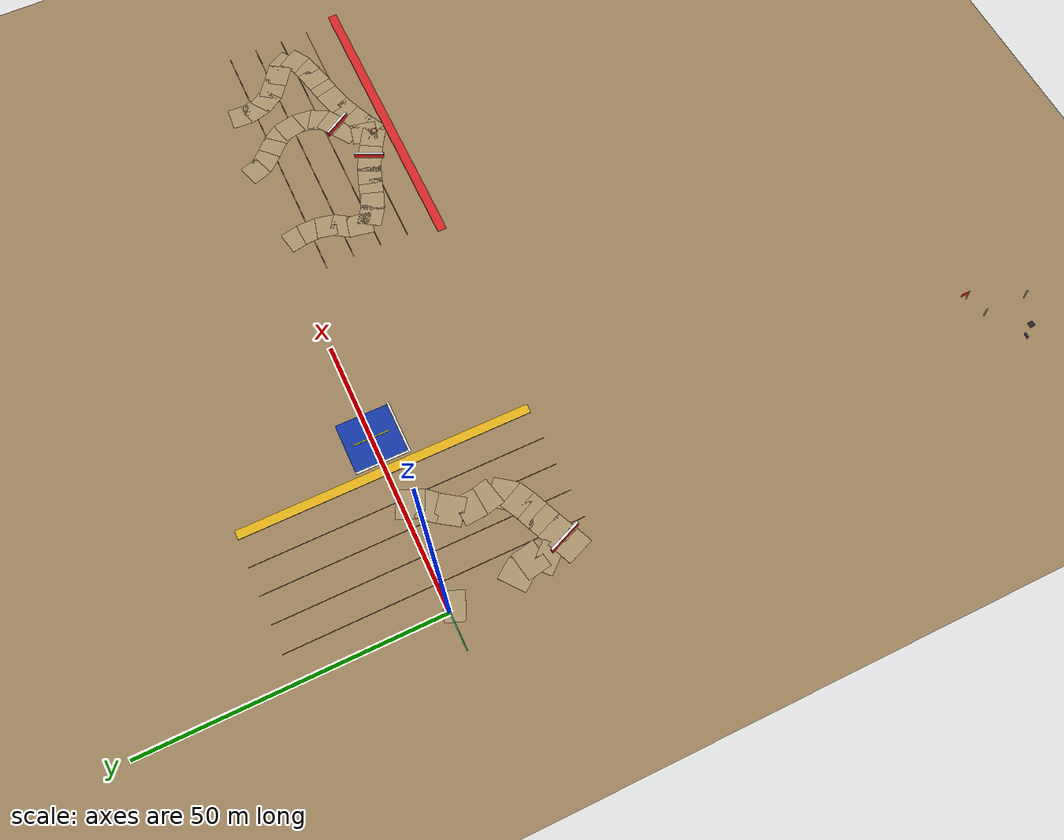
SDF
<sdf version="1.6">
 <world name="navitas_arena">
  <model name="ground_plane">
   <static>true</static>
   <link name="link">
    <collision name="collision">
     <geometry><plane><normal>0 0 1</normal><size>400 400</size></plane></geometry>
     <surface><friction><ode><mu>0.800</mu><mu2>0.800</mu2></ode></friction></surface>
    </collision>
    <visual name="visual">
     <cast_shadows>false</cast_shadows>
     <geometry><plane><normal>0 0 1</normal><size>400 400</size></plane></geometry>
     <material>
      <ambient>0.62 0.52 0.37 1</ambient>
      <diffuse>0.62 0.52 0.37 1</diffuse>
      <specular>0.04 0.04 0.04 1</specular>
     </material>
    </visual>
   </link>
  </model>
  <model name="judge_tent_pole_2">
   <static>true</static>
   <pose>8.000 -109.000 1.200 0 0 0.000</pose>
   <link name="link">
    <collision name="col"><geometry><box><size>0.180 0.180 2.400</size></box></geometry></collision>
    <visual name="vis">
     <geometry><box><size>0.180 0.180 2.400</size></box></geometry>
     <material>
      <ambient>0.85 0.85 0.80 1</ambient>
      <diffuse>0.85 0.85 0.80 1</diffuse>
      <specular>0.04 0.04 0.04 1</specular>
     </material>
    </visual>
   </link>
  </model>
  <model name="judge_tent_pole_4">
   <static>true</static>
   <pose>8.000 -101.000 1.200 0 0 0.000</pose>
   <link name="link">
    <collision name="col"><geometry><box><size>0.180 0.180 2.400</size></box></geometry></collision>
    <visual name="vis">
     <geometry><box><size>0.180 0.180 2.400</size></box></geometry>
     <material>
      <ambient>0.85 0.85 0.80 1</ambient>
      <diffuse>0.85 0.85 0.80 1</diffuse>
      <specular>0.04 0.04 0.04 1</specular>
     </material>
    </visual>
   </link>
  </model>
  <model name="judge_monitor_2">
   <static>true</static>
   <pose>1.400 -104.750 0.950 0 0 0.000</pose>
   <link name="link">
    <collision name="col"><geometry><box><size>1.000 0.120 0.650</size></box></geometry></collision>
    <visual name="vis">
     <geometry><box><size>1.000 0.120 0.650</size></box></geometry>
     <material>
      <ambient>0.02 0.02 0.03 1</ambient>
      <diffuse>0.02 0.02 0.03 1</diffuse>
      <specular>0.04 0.04 0.04 1</specular>
     </material>
    </visual>
   </link>
  </model>
  <model name="judge_chair_3">
   <static>true</static>
   <pose>3.000 -107.000 0.350 0 0 0.000</pose>
   <link name="link">
    <collision name="col"><geometry><box><size>0.900 0.900 0.250</size></box></geometry></collision>
    <visual name="vis">
     <geometry><box><size>0.900 0.900 0.250</size></box></geometry>
     <material>
      <ambient>0.16 0.16 0.16 1</ambient>
      <diffuse>0.16 0.16 0.16 1</diffuse>
      <specular>0.04 0.04 0.04 1</specular>
     </material>
    </visual>
   </link>
  </model>
  <model name="judge_flag">
   <static>true</static>
   <pose>12.000 -100.000 1.400 0 0 0.000</pose>
   <link name="link">
    <collision name="col"><geometry><box><size>0.120 0.120 2.800</size></box></geometry></collision>
    <visual name="vis">
     <geometry><box><size>0.120 0.120 2.800</size></box></geometry>
     <material>
      <ambient>0.85 0.85 0.85 1</ambient>
      <diffuse>0.85 0.85 0.85 1</diffuse>
      <specular>0.04 0.04 0.04 1</specular>
     </material>
    </visual>
   </link>
  </model>
  <model name="judge_flag_panel">
   <static>true</static>
   <pose>12.000 -99.200 2.300 0 0 0.000</pose>
   <link name="link">
    <collision name="col"><geometry><box><size>0.080 1.400 0.800</size></box></geometry></collision>
    <visual name="vis">
     <geometry><box><size>0.080 1.400 0.800</size></box></geometry>
     <material>
      <ambient>0.90 0.10 0.10 1</ambient>
      <diffuse>0.90 0.10 0.10 1</diffuse>
      <specular>0.04 0.04 0.04 1</specular>
     </material>
    </visual>
   </link>
  </model>
  <model name="landing">
   <static>true</static>
   <pose>32.000 0.000 0.010 0 0 0.000</pose>
   <link name="link">
    <collision name="col"><geometry><box><size>9.000 9.000 0.020</size></box></geometry></collision>
    <visual name="vis">
     <geometry><box><size>9.000 9.000 0.020</size></box></geometry>
     <material>
      <ambient>0.08 0.22 0.65 1</ambient>
      <diffuse>0.08 0.22 0.65 1</diffuse>
      <specular>0.04 0.04 0.04 1</specular>
     </material>
    </visual>
   </link>
  </model>
  <model name="landing_border_s">
   <static>true</static>
   <pose>32.000 -4.700 0.080 0 0 0.000</pose>
   <link name="link">
    <collision name="col"><geometry><box><size>9.800 0.350 0.080</size></box></geometry></collision>
    <visual name="vis">
     <geometry><box><size>9.800 0.350 0.080</size></box></geometry>
     <material>
      <ambient>0.95 0.95 0.95 1</ambient>
      <diffuse>0.95 0.95 0.95 1</diffuse>
      <specular>0.04 0.04 0.04 1</specular>
     </material>
    </visual>
   </link>
  </model>
  <model name="landing_border_w">
   <static>true</static>
   <pose>27.300 0.000 0.080 0 0 0.000</pose>
   <link name="link">
    <collision name="col"><geometry><box><size>0.350 9.000 0.080</size></box></geometry></collision>
    <visual name="vis">
     <geometry><box><size>0.350 9.000 0.080</size></box></geometry>
     <material>
      <ambient>0.95 0.95 0.95 1</ambient>
      <diffuse>0.95 0.95 0.95 1</diffuse>
      <specular>0.04 0.04 0.04 1</specular>
     </material>
    </visual>
   </link>
  </model>
  <model name="landing_cross_x">
   <static>true</static>
   <pose>32.000 0.000 0.100 0 0 0.000</pose>
   <link name="link">
    <collision name="col"><geometry><box><size>6.000 0.180 0.080</size></box></geometry></collision>
    <visual name="vis">
     <geometry><box><size>6.000 0.180 0.080</size></box></geometry>
     <material>
      <ambient>1.00 0.95 0.05 1</ambient>
      <diffuse>1.00 0.95 0.05 1</diffuse>
      <specular>0.04 0.04 0.04 1</specular>
     </material>
    </visual>
   </link>
  </model>
  <model name="landing_cross_y">
   <static>true</static>
   <pose>32.000 0.000 0.100 0 0 0.000</pose>
   <link name="link">
    <collision name="col"><geometry><box><size>0.180 6.000 0.080</size></box></geometry></collision>
    <visual name="vis">
     <geometry><box><size>0.180 6.000 0.080</size></box></geometry>
     <material>
      <ambient>1.00 0.95 0.05 1</ambient>
      <diffuse>1.00 0.95 0.05 1</diffuse>
      <specular>0.04 0.04 0.04 1</specular>
     </material>
    </visual>
   </link>
  </model>
  <model name="grid_orta_v6">
   <static>true</static>
   <pose>5.000 0.000 0.015 0 0 0.000</pose>
   <link name="link">
    <collision name="col"><geometry><box><size>0.100 50.000 0.006</size></box></geometry></collision>
    <visual name="vis">
     <geometry><box><size>0.100 50.000 0.006</size></box></geometry>
     <material>
      <ambient>0.30 0.24 0.17 1</ambient>
      <diffuse>0.30 0.24 0.17 1</diffuse>
      <specular>0.04 0.04 0.04 1</specular>
     </material>
    </visual>
   </link>
  </model>
  <model name="grid_orta_v7">
   <static>true</static>
   <pose>10.000 0.000 0.015 0 0 0.000</pose>
   <link name="link">
    <collision name="col"><geometry><box><size>0.100 50.000 0.006</size></box></geometry></collision>
    <visual name="vis">
     <geometry><box><size>0.100 50.000 0.006</size></box></geometry>
     <material>
      <ambient>0.30 0.24 0.17 1</ambient>
      <diffuse>0.30 0.24 0.17 1</diffuse>
      <specular>0.04 0.04 0.04 1</specular>
     </material>
    </visual>
   </link>
  </model>
  <model name="grid_orta_v8">
   <static>true</static>
   <pose>15.000 0.000 0.015 0 0 0.000</pose>
   <link name="link">
    <collision name="col"><geometry><box><size>0.100 50.000 0.006</size></box></geometry></collision>
    <visual name="vis">
     <geometry><box><size>0.100 50.000 0.006</size></box></geometry>
     <material>
      <ambient>0.30 0.24 0.17 1</ambient>
      <diffuse>0.30 0.24 0.17 1</diffuse>
      <specular>0.04 0.04 0.04 1</specular>
     </material>
    </visual>
   </link>
  </model>
  <model name="grid_orta_v9">
   <static>true</static>
   <pose>20.000 0.000 0.015 0 0 0.000</pose>
   <link name="link">
    <collision name="col"><geometry><box><size>0.100 50.000 0.006</size></box></geometry></collision>
    <visual name="vis">
     <geometry><box><size>0.100 50.000 0.006</size></box></geometry>
     <material>
      <ambient>0.30 0.24 0.17 1</ambient>
      <diffuse>0.30 0.24 0.17 1</diffuse>
      <specular>0.04 0.04 0.04 1</specular>
     </material>
    </visual>
   </link>
  </model>
  <model name="grid_orta_v10">
   <static>true</static>
   <pose>25.000 0.000 0.015 0 0 0.000</pose>
   <link name="link">
    <collision name="col"><geometry><box><size>0.100 50.000 0.006</size></box></geometry></collision>
    <visual name="vis">
     <geometry><box><size>0.100 50.000 0.006</size></box></geometry>
     <material>
      <ambient>0.30 0.24 0.17 1</ambient>
      <diffuse>0.30 0.24 0.17 1</diffuse>
      <specular>0.04 0.04 0.04 1</specular>
     </material>
    </visual>
   </link>
  </model>
  <model name="brd_orta_E">
   <static>true</static>
   <pose>25.800 0.000 0.040 0 0 0.000</pose>
   <link name="link">
    <collision name="col"><geometry><box><size>1.600 50.000 0.080</size></box></geometry></collision>
    <visual name="vis">
     <geometry><box><size>1.600 50.000 0.080</size></box></geometry>
     <material>
      <ambient>0.90 0.70 0.10 1</ambient>
      <diffuse>0.90 0.70 0.10 1</diffuse>
      <specular>0.04 0.04 0.04 1</specular>
     </material>
    </visual>
   </link>
  </model>
  <model name="road_orta_2_2">
   <static>true</static>
   <pose>1.478 -16.984 0.040 0 0 0.736</pose>
   <link name="link">
    <collision name="col"><geometry><box><size>3.606 5.000 0.020</size></box></geometry></collision>
    <visual name="vis">
     <geometry><box><size>3.606 5.000 0.020</size></box></geometry>
     <material>
      <ambient>0.67 0.58 0.43 1</ambient>
      <diffuse>0.67 0.58 0.43 1</diffuse>
      <specular>0.04 0.04 0.04 1</specular>
     </material>
    </visual>
   </link>
  </model>
  <model name="road_orta_2_3">
   <static>true</static>
   <pose>2.206 -14.464 0.040 0 0 1.740</pose>
   <link name="link">
    <collision name="col"><geometry><box><size>4.171 5.000 0.020</size></box></geometry></collision>
    <visual name="vis">
     <geometry><box><size>4.171 5.000 0.020</size></box></geometry>
     <material>
      <ambient>0.67 0.58 0.43 1</ambient>
      <diffuse>0.67 0.58 0.43 1</diffuse>
      <specular>0.04 0.04 0.04 1</specular>
     </material>
    </visual>
   </link>
  </model>
  <model name="road_orta_2_4">
   <static>true</static>
   <pose>1.013 -11.639 0.040 0 0 2.219</pose>
   <link name="link">
    <collision name="col"><geometry><box><size>3.943 5.000 0.020</size></box></geometry></collision>
    <visual name="vis">
     <geometry><box><size>3.943 5.000 0.020</size></box></geometry>
     <material>
      <ambient>0.67 0.58 0.43 1</ambient>
      <diffuse>0.67 0.58 0.43 1</diffuse>
      <specular>0.04 0.04 0.04 1</specular>
     </material>
    </visual>
   </link>
  </model>
  <model name="road_orta_2_8">
   <static>true</static>
   <pose>0.663 -1.000 0.040 0 0 1.196</pose>
   <link name="link">
    <collision name="col"><geometry><box><size>3.408 5.000 0.020</size></box></geometry></collision>
    <visual name="vis">
     <geometry><box><size>3.408 5.000 0.020</size></box></geometry>
     <material>
      <ambient>0.67 0.58 0.43 1</ambient>
      <diffuse>0.67 0.58 0.43 1</diffuse>
      <specular>0.04 0.04 0.04 1</specular>
     </material>
    </visual>
   </link>
  </model>
  <model name="road_orta_3_1">
   <static>true</static>
   <pose>1.786 -21.236 0.040 0 0 0.392</pose>
   <link name="link">
    <collision name="col"><geometry><box><size>3.837 5.000 0.020</size></box></geometry></collision>
    <visual name="vis">
     <geometry><box><size>3.837 5.000 0.020</size></box></geometry>
     <material>
      <ambient>0.67 0.58 0.43 1</ambient>
      <diffuse>0.67 0.58 0.43 1</diffuse>
      <specular>0.04 0.04 0.04 1</specular>
     </material>
    </visual>
   </link>
  </model>
  <model name="road_orta_3_2">
   <static>true</static>
   <pose>4.474 -20.087 0.040 0 0 0.416</pose>
   <link name="link">
    <collision name="col"><geometry><box><size>3.809 5.000 0.020</size></box></geometry></collision>
    <visual name="vis">
     <geometry><box><size>3.809 5.000 0.020</size></box></geometry>
     <material>
      <ambient>0.67 0.58 0.43 1</ambient>
      <diffuse>0.67 0.58 0.43 1</diffuse>
      <specular>0.04 0.04 0.04 1</specular>
     </material>
    </visual>
   </link>
  </model>
  <model name="road_orta_3_3">
   <static>true</static>
   <pose>6.998 -19.002 0.040 0 0 0.395</pose>
   <link name="link">
    <collision name="col"><geometry><box><size>3.487 5.000 0.020</size></box></geometry></collision>
    <visual name="vis">
     <geometry><box><size>3.487 5.000 0.020</size></box></geometry>
     <material>
      <ambient>0.67 0.58 0.43 1</ambient>
      <diffuse>0.67 0.58 0.43 1</diffuse>
      <specular>0.04 0.04 0.04 1</specular>
     </material>
    </visual>
   </link>
  </model>
  <model name="road_orta_3_4">
   <static>true</static>
   <pose>9.476 -17.986 0.040 0 0 0.383</pose>
   <link name="link">
    <collision name="col"><geometry><box><size>3.669 5.000 0.020</size></box></geometry></collision>
    <visual name="vis">
     <geometry><box><size>3.669 5.000 0.020</size></box></geometry>
     <material>
      <ambient>0.67 0.58 0.43 1</ambient>
      <diffuse>0.67 0.58 0.43 1</diffuse>
      <specular>0.04 0.04 0.04 1</specular>
     </material>
    </visual>
   </link>
  </model>
  <model name="road_orta_3_5">
   <static>true</static>
   <pose>11.907 -16.896 0.040 0 0 0.463</pose>
   <link name="link">
    <collision name="col"><geometry><box><size>3.463 5.000 0.020</size></box></geometry></collision>
    <visual name="vis">
     <geometry><box><size>3.463 5.000 0.020</size></box></geometry>
     <material>
      <ambient>0.67 0.58 0.43 1</ambient>
      <diffuse>0.67 0.58 0.43 1</diffuse>
      <specular>0.04 0.04 0.04 1</specular>
     </material>
    </visual>
   </link>
  </model>
  <model name="road_orta_3_6">
   <static>true</static>
   <pose>14.041 -15.042 0.040 0 0 0.914</pose>
   <link name="link">
    <collision name="col"><geometry><box><size>4.137 5.000 0.020</size></box></geometry></collision>
    <visual name="vis">
     <geometry><box><size>4.137 5.000 0.020</size></box></geometry>
     <material>
      <ambient>0.67 0.58 0.43 1</ambient>
      <diffuse>0.67 0.58 0.43 1</diffuse>
      <specular>0.04 0.04 0.04 1</specular>
     </material>
    </visual>
   </link>
  </model>
  <model name="road_orta_3_7">
   <static>true</static>
   <pose>14.708 -12.340 0.040 0 0 1.793</pose>
   <link name="link">
    <collision name="col"><geometry><box><size>3.812 5.000 0.020</size></box></geometry></collision>
    <visual name="vis">
     <geometry><box><size>3.812 5.000 0.020</size></box></geometry>
     <material>
      <ambient>0.67 0.58 0.43 1</ambient>
      <diffuse>0.67 0.58 0.43 1</diffuse>
      <specular>0.04 0.04 0.04 1</specular>
     </material>
    </visual>
   </link>
  </model>
  <model name="road_orta_3_8">
   <static>true</static>
   <pose>14.275 -9.460 0.040 0 0 1.647</pose>
   <link name="link">
    <collision name="col"><geometry><box><size>3.828 5.000 0.020</size></box></geometry></collision>
    <visual name="vis">
     <geometry><box><size>3.828 5.000 0.020</size></box></geometry>
     <material>
      <ambient>0.67 0.58 0.43 1</ambient>
      <diffuse>0.67 0.58 0.43 1</diffuse>
      <specular>0.04 0.04 0.04 1</specular>
     </material>
    </visual>
   </link>
  </model>
  <model name="road_orta_3_9">
   <static>true</static>
   <pose>15.219 -6.500 0.040 0 0 0.958</pose>
   <link name="link">
    <collision name="col"><geometry><box><size>4.567 5.000 0.020</size></box></geometry></collision>
    <visual name="vis">
     <geometry><box><size>4.567 5.000 0.020</size></box></geometry>
     <material>
      <ambient>0.67 0.58 0.43 1</ambient>
      <diffuse>0.67 0.58 0.43 1</diffuse>
      <specular>0.04 0.04 0.04 1</specular>
     </material>
    </visual>
   </link>
  </model>
  <model name="road_orta_3_10">
   <static>true</static>
   <pose>17.181 -4.000 0.040 0 0 0.834</pose>
   <link name="link">
    <collision name="col"><geometry><box><size>3.600 5.000 0.020</size></box></geometry></collision>
    <visual name="vis">
     <geometry><box><size>3.600 5.000 0.020</size></box></geometry>
     <material>
      <ambient>0.67 0.58 0.43 1</ambient>
      <diffuse>0.67 0.58 0.43 1</diffuse>
      <specular>0.04 0.04 0.04 1</specular>
     </material>
    </visual>
   </link>
  </model>
  <model name="road_orta_3_11">
   <static>true</static>
   <pose>18.837 -1.300 0.040 0 0 1.156</pose>
   <link name="link">
    <collision name="col"><geometry><box><size>4.615 5.000 0.020</size></box></geometry></collision>
    <visual name="vis">
     <geometry><box><size>4.615 5.000 0.020</size></box></geometry>
     <material>
      <ambient>0.67 0.58 0.43 1</ambient>
      <diffuse>0.67 0.58 0.43 1</diffuse>
      <specular>0.04 0.04 0.04 1</specular>
     </material>
    </visual>
   </link>
  </model>
  <model name="bar_orta_3">
   <static>true</static>
   <pose>3.143 -20.675 0.500 0 0 1.978</pose>
   <link name="link">
    <collision name="col"><geometry><box><size>6.000 0.500 1.000</size></box></geometry></collision>
    <visual name="vis">
     <geometry><box><size>6.000 0.500 1.000</size></box></geometry>
     <material>
      <ambient>0.85 0.10 0.10 1</ambient>
      <diffuse>0.85 0.10 0.10 1</diffuse>
      <specular>0.04 0.04 0.04 1</specular>
     </material>
    </visual>
   </link>
  </model>
  <model name="bar_orta_3b">
   <static>true</static>
   <pose>3.143 -20.675 1.000 0 0 1.978</pose>
   <link name="link">
    <collision name="col"><geometry><box><size>6.000 0.400 0.300</size></box></geometry></collision>
    <visual name="vis">
     <geometry><box><size>6.000 0.400 0.300</size></box></geometry>
     <material>
      <ambient>0.95 0.95 0.95 1</ambient>
      <diffuse>0.95 0.95 0.95 1</diffuse>
      <specular>0.04 0.04 0.04 1</specular>
     </material>
    </visual>
   </link>
  </model>
  <model name="grid_zor_h0">
   <static>true</static>
   <pose>90.000 -25.000 0.015 0 0 0.000</pose>
   <link name="link">
    <collision name="col"><geometry><box><size>50.000 0.100 0.006</size></box></geometry></collision>
    <visual name="vis">
     <geometry><box><size>50.000 0.100 0.006</size></box></geometry>
     <material>
      <ambient>0.30 0.24 0.17 1</ambient>
      <diffuse>0.30 0.24 0.17 1</diffuse>
      <specular>0.04 0.04 0.04 1</specular>
     </material>
    </visual>
   </link>
  </model>
  <model name="grid_zor_h1">
   <static>true</static>
   <pose>90.000 -20.000 0.015 0 0 0.000</pose>
   <link name="link">
    <collision name="col"><geometry><box><size>50.000 0.100 0.006</size></box></geometry></collision>
    <visual name="vis">
     <geometry><box><size>50.000 0.100 0.006</size></box></geometry>
     <material>
      <ambient>0.30 0.24 0.17 1</ambient>
      <diffuse>0.30 0.24 0.17 1</diffuse>
      <specular>0.04 0.04 0.04 1</specular>
     </material>
    </visual>
   </link>
  </model>
  <model name="grid_zor_h2">
   <static>true</static>
   <pose>90.000 -15.000 0.015 0 0 0.000</pose>
   <link name="link">
    <collision name="col"><geometry><box><size>50.000 0.100 0.006</size></box></geometry></collision>
    <visual name="vis">
     <geometry><box><size>50.000 0.100 0.006</size></box></geometry>
     <material>
      <ambient>0.30 0.24 0.17 1</ambient>
      <diffuse>0.30 0.24 0.17 1</diffuse>
      <specular>0.04 0.04 0.04 1</specular>
     </material>
    </visual>
   </link>
  </model>
  <model name="grid_zor_h3">
   <static>true</static>
   <pose>90.000 -10.000 0.015 0 0 0.000</pose>
   <link name="link">
    <collision name="col"><geometry><box><size>50.000 0.100 0.006</size></box></geometry></collision>
    <visual name="vis">
     <geometry><box><size>50.000 0.100 0.006</size></box></geometry>
     <material>
      <ambient>0.30 0.24 0.17 1</ambient>
      <diffuse>0.30 0.24 0.17 1</diffuse>
      <specular>0.04 0.04 0.04 1</specular>
     </material>
    </visual>
   </link>
  </model>
  <model name="grid_zor_h4">
   <static>true</static>
   <pose>90.000 -5.000 0.015 0 0 0.000</pose>
   <link name="link">
    <collision name="col"><geometry><box><size>50.000 0.100 0.006</size></box></geometry></collision>
    <visual name="vis">
     <geometry><box><size>50.000 0.100 0.006</size></box></geometry>
     <material>
      <ambient>0.30 0.24 0.17 1</ambient>
      <diffuse>0.30 0.24 0.17 1</diffuse>
      <specular>0.04 0.04 0.04 1</specular>
     </material>
    </visual>
   </link>
  </model>
  <model name="brd_zor_S">
   <static>true</static>
   <pose>90.000 -25.800 0.040 0 0 0.000</pose>
   <link name="link">
    <collision name="col"><geometry><box><size>53.200 1.600 0.080</size></box></geometry></collision>
    <visual name="vis">
     <geometry><box><size>53.200 1.600 0.080</size></box></geometry>
     <material>
      <ambient>0.85 0.15 0.15 1</ambient>
      <diffuse>0.85 0.15 0.15 1</diffuse>
      <specular>0.04 0.04 0.04 1</specular>
     </material>
    </visual>
   </link>
  </model>
  <model name="road_zor_1_0">
   <static>true</static>
   <pose>87.048 -22.266 0.040 0 0 2.610</pose>
   <link name="link">
    <collision name="col"><geometry><box><size>3.796 4.200 0.020</size></box></geometry></collision>
    <visual name="vis">
     <geometry><box><size>3.796 4.200 0.020</size></box></geometry>
     <material>
      <ambient>0.67 0.58 0.43 1</ambient>
      <diffuse>0.67 0.58 0.43 1</diffuse>
      <specular>0.04 0.04 0.04 1</specular>
     </material>
    </visual>
   </link>
  </model>
  <model name="road_zor_1_1">
   <static>true</static>
   <pose>84.552 -20.856 0.040 0 0 2.646</pose>
   <link name="link">
    <collision name="col"><geometry><box><size>3.737 4.200 0.020</size></box></geometry></collision>
    <visual name="vis">
     <geometry><box><size>3.737 4.200 0.020</size></box></geometry>
     <material>
      <ambient>0.67 0.58 0.43 1</ambient>
      <diffuse>0.67 0.58 0.43 1</diffuse>
      <specular>0.04 0.04 0.04 1</specular>
     </material>
    </visual>
   </link>
  </model>
  <model name="road_zor_1_2">
   <static>true</static>
   <pose>82.078 -19.642 0.040 0 0 2.727</pose>
   <link name="link">
    <collision name="col"><geometry><box><size>3.580 4.200 0.020</size></box></geometry></collision>
    <visual name="vis">
     <geometry><box><size>3.580 4.200 0.020</size></box></geometry>
     <material>
      <ambient>0.67 0.58 0.43 1</ambient>
      <diffuse>0.67 0.58 0.43 1</diffuse>
      <specular>0.04 0.04 0.04 1</specular>
     </material>
    </visual>
   </link>
  </model>
  <model name="road_zor_1_3">
   <static>true</static>
   <pose>79.591 -18.702 0.040 0 0 2.835</pose>
   <link name="link">
    <collision name="col"><geometry><box><size>3.546 4.200 0.020</size></box></geometry></collision>
    <visual name="vis">
     <geometry><box><size>3.546 4.200 0.020</size></box></geometry>
     <material>
      <ambient>0.67 0.58 0.43 1</ambient>
      <diffuse>0.67 0.58 0.43 1</diffuse>
      <specular>0.04 0.04 0.04 1</specular>
     </material>
    </visual>
   </link>
  </model>
  <model name="road_zor_1_4">
   <static>true</static>
   <pose>76.927 -17.886 0.040 0 0 2.853</pose>
   <link name="link">
    <collision name="col"><geometry><box><size>3.825 4.200 0.020</size></box></geometry></collision>
    <visual name="vis">
     <geometry><box><size>3.825 4.200 0.020</size></box></geometry>
     <material>
      <ambient>0.67 0.58 0.43 1</ambient>
      <diffuse>0.67 0.58 0.43 1</diffuse>
      <specular>0.04 0.04 0.04 1</specular>
     </material>
    </visual>
   </link>
  </model>
  <model name="road_zor_1_5">
   <static>true</static>
   <pose>74.215 -17.017 0.040 0 0 2.810</pose>
   <link name="link">
    <collision name="col"><geometry><box><size>3.672 4.200 0.020</size></box></geometry></collision>
    <visual name="vis">
     <geometry><box><size>3.672 4.200 0.020</size></box></geometry>
     <material>
      <ambient>0.67 0.58 0.43 1</ambient>
      <diffuse>0.67 0.58 0.43 1</diffuse>
      <specular>0.04 0.04 0.04 1</specular>
     </material>
    </visual>
   </link>
  </model>
  <model name="road_zor_1_6">
   <static>true</static>
   <pose>71.618 -15.783 0.040 0 0 2.595</pose>
   <link name="link">
    <collision name="col"><geometry><box><size>3.911 4.200 0.020</size></box></geometry></collision>
    <visual name="vis">
     <geometry><box><size>3.911 4.200 0.020</size></box></geometry>
     <material>
      <ambient>0.67 0.58 0.43 1</ambient>
      <diffuse>0.67 0.58 0.43 1</diffuse>
      <specular>0.04 0.04 0.04 1</specular>
     </material>
    </visual>
   </link>
  </model>
  <model name="road_zor_1_7">
   <static>true</static>
   <pose>70.666 -13.328 0.040 0 0 1.373</pose>
   <link name="link">
    <collision name="col"><geometry><box><size>4.310 4.200 0.020</size></box></geometry></collision>
    <visual name="vis">
     <geometry><box><size>4.310 4.200 0.020</size></box></geometry>
     <material>
      <ambient>0.67 0.58 0.43 1</ambient>
      <diffuse>0.67 0.58 0.43 1</diffuse>
      <specular>0.04 0.04 0.04 1</specular>
     </material>
    </visual>
   </link>
  </model>
  <model name="road_zor_1_8">
   <static>true</static>
   <pose>71.809 -10.426 0.040 0 0 0.990</pose>
   <link name="link">
    <collision name="col"><geometry><box><size>3.844 4.200 0.020</size></box></geometry></collision>
    <visual name="vis">
     <geometry><box><size>3.844 4.200 0.020</size></box></geometry>
     <material>
      <ambient>0.67 0.58 0.43 1</ambient>
      <diffuse>0.67 0.58 0.43 1</diffuse>
      <specular>0.04 0.04 0.04 1</specular>
     </material>
    </visual>
   </link>
  </model>
  <model name="road_zor_1_9">
   <static>true</static>
   <pose>72.908 -7.898 0.040 0 0 1.351</pose>
   <link name="link">
    <collision name="col"><geometry><box><size>3.560 4.200 0.020</size></box></geometry></collision>
    <visual name="vis">
     <geometry><box><size>3.560 4.200 0.020</size></box></geometry>
     <material>
      <ambient>0.67 0.58 0.43 1</ambient>
      <diffuse>0.67 0.58 0.43 1</diffuse>
      <specular>0.04 0.04 0.04 1</specular>
     </material>
    </visual>
   </link>
  </model>
  <model name="road_zor_1_10">
   <static>true</static>
   <pose>73.149 -5.200 0.040 0 0 1.606</pose>
   <link name="link">
    <collision name="col"><geometry><box><size>3.702 4.200 0.020</size></box></geometry></collision>
    <visual name="vis">
     <geometry><box><size>3.702 4.200 0.020</size></box></geometry>
     <material>
      <ambient>0.67 0.58 0.43 1</ambient>
      <diffuse>0.67 0.58 0.43 1</diffuse>
      <specular>0.04 0.04 0.04 1</specular>
     </material>
    </visual>
   </link>
  </model>
  <model name="road_zor_1_11">
   <static>true</static>
   <pose>72.821 -2.400 0.040 0 0 1.767</pose>
   <link name="link">
    <collision name="col"><geometry><box><size>3.755 4.200 0.020</size></box></geometry></collision>
    <visual name="vis">
     <geometry><box><size>3.755 4.200 0.020</size></box></geometry>
     <material>
      <ambient>0.67 0.58 0.43 1</ambient>
      <diffuse>0.67 0.58 0.43 1</diffuse>
      <specular>0.04 0.04 0.04 1</specular>
     </material>
    </visual>
   </link>
  </model>
  <model name="road_zor_2_0">
   <static>true</static>
   <pose>88.680 -21.250 0.040 0 0 1.355</pose>
   <link name="link">
    <collision name="col"><geometry><box><size>4.483 4.200 0.020</size></box></geometry></collision>
    <visual name="vis">
     <geometry><box><size>4.483 4.200 0.020</size></box></geometry>
     <material>
      <ambient>0.67 0.58 0.43 1</ambient>
      <diffuse>0.67 0.58 0.43 1</diffuse>
      <specular>0.04 0.04 0.04 1</specular>
     </material>
    </visual>
   </link>
  </model>
  <model name="road_zor_2_1">
   <static>true</static>
   <pose>90.587 -18.484 0.040 0 0 0.588</pose>
   <link name="link">
    <collision name="col"><geometry><box><size>4.562 4.200 0.020</size></box></geometry></collision>
    <visual name="vis">
     <geometry><box><size>4.562 4.200 0.020</size></box></geometry>
     <material>
      <ambient>0.67 0.58 0.43 1</ambient>
      <diffuse>0.67 0.58 0.43 1</diffuse>
      <specular>0.04 0.04 0.04 1</specular>
     </material>
    </visual>
   </link>
  </model>
  <model name="road_zor_2_2">
   <static>true</static>
   <pose>93.232 -16.688 0.040 0 0 0.608</pose>
   <link name="link">
    <collision name="col"><geometry><box><size>3.633 4.200 0.020</size></box></geometry></collision>
    <visual name="vis">
     <geometry><box><size>3.633 4.200 0.020</size></box></geometry>
     <material>
      <ambient>0.67 0.58 0.43 1</ambient>
      <diffuse>0.67 0.58 0.43 1</diffuse>
      <specular>0.04 0.04 0.04 1</specular>
     </material>
    </visual>
   </link>
  </model>
  <model name="road_zor_2_3">
   <static>true</static>
   <pose>94.960 -14.833 0.040 0 0 1.056</pose>
   <link name="link">
    <collision name="col"><geometry><box><size>3.366 4.200 0.020</size></box></geometry></collision>
    <visual name="vis">
     <geometry><box><size>3.366 4.200 0.020</size></box></geometry>
     <material>
      <ambient>0.67 0.58 0.43 1</ambient>
      <diffuse>0.67 0.58 0.43 1</diffuse>
      <specular>0.04 0.04 0.04 1</specular>
     </material>
    </visual>
   </link>
  </model>
  <model name="road_zor_2_4">
   <static>true</static>
   <pose>95.709 -12.340 0.040 0 0 1.471</pose>
   <link name="link">
    <collision name="col"><geometry><box><size>3.754 4.200 0.020</size></box></geometry></collision>
    <visual name="vis">
     <geometry><box><size>3.754 4.200 0.020</size></box></geometry>
     <material>
      <ambient>0.67 0.58 0.43 1</ambient>
      <diffuse>0.67 0.58 0.43 1</diffuse>
      <specular>0.04 0.04 0.04 1</specular>
     </material>
    </visual>
   </link>
  </model>
  <model name="road_zor_2_5">
   <static>true</static>
   <pose>95.504 -9.460 0.040 0 0 1.804</pose>
   <link name="link">
    <collision name="col"><geometry><box><size>3.901 4.200 0.020</size></box></geometry></collision>
    <visual name="vis">
     <geometry><box><size>3.901 4.200 0.020</size></box></geometry>
     <material>
      <ambient>0.67 0.58 0.43 1</ambient>
      <diffuse>0.67 0.58 0.43 1</diffuse>
      <specular>0.04 0.04 0.04 1</specular>
     </material>
    </visual>
   </link>
  </model>
  <model name="road_zor_2_6">
   <static>true</static>
   <pose>94.415 -7.000 0.040 0 0 2.210</pose>
   <link name="link">
    <collision name="col"><geometry><box><size>3.391 4.200 0.020</size></box></geometry></collision>
    <visual name="vis">
     <geometry><box><size>3.391 4.200 0.020</size></box></geometry>
     <material>
      <ambient>0.67 0.58 0.43 1</ambient>
      <diffuse>0.67 0.58 0.43 1</diffuse>
      <specular>0.04 0.04 0.04 1</specular>
     </material>
    </visual>
   </link>
  </model>
  <model name="road_zor_2_7">
   <static>true</static>
   <pose>92.602 -5.000 0.040 0 0 2.390</pose>
   <link name="link">
    <collision name="col"><geometry><box><size>3.829 4.200 0.020</size></box></geometry></collision>
    <visual name="vis">
     <geometry><box><size>3.829 4.200 0.020</size></box></geometry>
     <material>
      <ambient>0.67 0.58 0.43 1</ambient>
      <diffuse>0.67 0.58 0.43 1</diffuse>
      <specular>0.04 0.04 0.04 1</specular>
     </material>
    </visual>
   </link>
  </model>
  <model name="road_zor_2_8">
   <static>true</static>
   <pose>90.593 -3.000 0.040 0 0 2.325</pose>
   <link name="link">
    <collision name="col"><geometry><box><size>3.644 4.200 0.020</size></box></geometry></collision>
    <visual name="vis">
     <geometry><box><size>3.644 4.200 0.020</size></box></geometry>
     <material>
      <ambient>0.67 0.58 0.43 1</ambient>
      <diffuse>0.67 0.58 0.43 1</diffuse>
      <specular>0.04 0.04 0.04 1</specular>
     </material>
    </visual>
   </link>
  </model>
  <model name="road_zor_2_9">
   <static>true</static>
   <pose>89.256 -0.800 0.040 0 0 1.891</pose>
   <link name="link">
    <collision name="col"><geometry><box><size>3.428 4.200 0.020</size></box></geometry></collision>
    <visual name="vis">
     <geometry><box><size>3.428 4.200 0.020</size></box></geometry>
     <material>
      <ambient>0.67 0.58 0.43 1</ambient>
      <diffuse>0.67 0.58 0.43 1</diffuse>
      <specular>0.04 0.04 0.04 1</specular>
     </material>
    </visual>
   </link>
  </model>
  <model name="road_zor_3_0">
   <static>true</static>
   <pose>89.558 -22.399 0.040 0 0 0.445</pose>
   <link name="link">
    <collision name="col"><geometry><box><size>3.696 4.200 0.020</size></box></geometry></collision>
    <visual name="vis">
     <geometry><box><size>3.696 4.200 0.020</size></box></geometry>
     <material>
      <ambient>0.67 0.58 0.43 1</ambient>
      <diffuse>0.67 0.58 0.43 1</diffuse>
      <specular>0.04 0.04 0.04 1</specular>
     </material>
    </visual>
   </link>
  </model>
  <model name="road_zor_3_1">
   <static>true</static>
   <pose>92.056 -21.236 0.040 0 0 0.426</pose>
   <link name="link">
    <collision name="col"><geometry><box><size>3.615 4.200 0.020</size></box></geometry></collision>
    <visual name="vis">
     <geometry><box><size>3.615 4.200 0.020</size></box></geometry>
     <material>
      <ambient>0.67 0.58 0.43 1</ambient>
      <diffuse>0.67 0.58 0.43 1</diffuse>
      <specular>0.04 0.04 0.04 1</specular>
     </material>
    </visual>
   </link>
  </model>
  <model name="road_zor_3_2">
   <static>true</static>
   <pose>94.778 -20.087 0.040 0 0 0.377</pose>
   <link name="link">
    <collision name="col"><geometry><box><size>4.095 4.200 0.020</size></box></geometry></collision>
    <visual name="vis">
     <geometry><box><size>4.095 4.200 0.020</size></box></geometry>
     <material>
      <ambient>0.67 0.58 0.43 1</ambient>
      <diffuse>0.67 0.58 0.43 1</diffuse>
      <specular>0.04 0.04 0.04 1</specular>
     </material>
    </visual>
   </link>
  </model>
  <model name="road_zor_3_3">
   <static>true</static>
   <pose>98.083 -19.002 0.040 0 0 0.267</pose>
   <link name="link">
    <collision name="col"><geometry><box><size>4.675 4.200 0.020</size></box></geometry></collision>
    <visual name="vis">
     <geometry><box><size>4.675 4.200 0.020</size></box></geometry>
     <material>
      <ambient>0.67 0.58 0.43 1</ambient>
      <diffuse>0.67 0.58 0.43 1</diffuse>
      <specular>0.04 0.04 0.04 1</specular>
     </material>
    </visual>
   </link>
  </model>
  <model name="road_zor_3_4">
   <static>true</static>
   <pose>101.390 -18.163 0.040 0 0 0.225</pose>
   <link name="link">
    <collision name="col"><geometry><box><size>3.949 4.200 0.020</size></box></geometry></collision>
    <visual name="vis">
     <geometry><box><size>3.949 4.200 0.020</size></box></geometry>
     <material>
      <ambient>0.67 0.58 0.43 1</ambient>
      <diffuse>0.67 0.58 0.43 1</diffuse>
      <specular>0.04 0.04 0.04 1</specular>
     </material>
    </visual>
   </link>
  </model>
  <model name="road_zor_3_5">
   <static>true</static>
   <pose>104.353 -17.463 0.040 0 0 0.239</pose>
   <link name="link">
    <collision name="col"><geometry><box><size>3.940 4.200 0.020</size></box></geometry></collision>
    <visual name="vis">
     <geometry><box><size>3.940 4.200 0.020</size></box></geometry>
     <material>
      <ambient>0.67 0.58 0.43 1</ambient>
      <diffuse>0.67 0.58 0.43 1</diffuse>
      <specular>0.04 0.04 0.04 1</specular>
     </material>
    </visual>
   </link>
  </model>
  <model name="road_zor_3_6">
   <static>true</static>
   <pose>107.102 -16.714 0.040 0 0 0.297</pose>
   <link name="link">
    <collision name="col"><geometry><box><size>3.562 4.200 0.020</size></box></geometry></collision>
    <visual name="vis">
     <geometry><box><size>3.562 4.200 0.020</size></box></geometry>
     <material>
      <ambient>0.67 0.58 0.43 1</ambient>
      <diffuse>0.67 0.58 0.43 1</diffuse>
      <specular>0.04 0.04 0.04 1</specular>
     </material>
    </visual>
   </link>
  </model>
  <model name="road_zor_3_7">
   <static>true</static>
   <pose>109.474 -15.662 0.040 0 0 0.542</pose>
   <link name="link">
    <collision name="col"><geometry><box><size>3.467 4.200 0.020</size></box></geometry></collision>
    <visual name="vis">
     <geometry><box><size>3.467 4.200 0.020</size></box></geometry>
     <material>
      <ambient>0.67 0.58 0.43 1</ambient>
      <diffuse>0.67 0.58 0.43 1</diffuse>
      <specular>0.04 0.04 0.04 1</specular>
     </material>
    </visual>
   </link>
  </model>
  <model name="road_zor_3_8">
   <static>true</static>
   <pose>109.844 -13.779 0.040 0 0 2.110</pose>
   <link name="link">
    <collision name="col"><geometry><box><size>3.745 4.200 0.020</size></box></geometry></collision>
    <visual name="vis">
     <geometry><box><size>3.745 4.200 0.020</size></box></geometry>
     <material>
      <ambient>0.67 0.58 0.43 1</ambient>
      <diffuse>0.67 0.58 0.43 1</diffuse>
      <specular>0.04 0.04 0.04 1</specular>
     </material>
    </visual>
   </link>
  </model>
  <model name="road_zor_3_9">
   <static>true</static>
   <pose>107.779 -11.646 0.040 0 0 2.543</pose>
   <link name="link">
    <collision name="col"><geometry><box><size>4.133 4.200 0.020</size></box></geometry></collision>
    <visual name="vis">
     <geometry><box><size>4.133 4.200 0.020</size></box></geometry>
     <material>
      <ambient>0.67 0.58 0.43 1</ambient>
      <diffuse>0.67 0.58 0.43 1</diffuse>
      <specular>0.04 0.04 0.04 1</specular>
     </material>
    </visual>
   </link>
  </model>
  <model name="road_zor_3_10">
   <static>true</static>
   <pose>105.192 -9.813 0.040 0 0 2.507</pose>
   <link name="link">
    <collision name="col"><geometry><box><size>4.009 4.200 0.020</size></box></geometry></collision>
    <visual name="vis">
     <geometry><box><size>4.009 4.200 0.020</size></box></geometry>
     <material>
      <ambient>0.67 0.58 0.43 1</ambient>
      <diffuse>0.67 0.58 0.43 1</diffuse>
      <specular>0.04 0.04 0.04 1</specular>
     </material>
    </visual>
   </link>
  </model>
  <model name="road_zor_3_11">
   <static>true</static>
   <pose>103.181 -7.746 0.040 0 0 2.156</pose>
   <link name="link">
    <collision name="col"><geometry><box><size>3.649 4.200 0.020</size></box></geometry></collision>
    <visual name="vis">
     <geometry><box><size>3.649 4.200 0.020</size></box></geometry>
     <material>
      <ambient>0.67 0.58 0.43 1</ambient>
      <diffuse>0.67 0.58 0.43 1</diffuse>
      <specular>0.04 0.04 0.04 1</specular>
     </material>
    </visual>
   </link>
  </model>
  <model name="road_zor_3_12">
   <static>true</static>
   <pose>102.061 -5.200 0.040 0 0 1.823</pose>
   <link name="link">
    <collision name="col"><geometry><box><size>3.792 4.200 0.020</size></box></geometry></collision>
    <visual name="vis">
     <geometry><box><size>3.792 4.200 0.020</size></box></geometry>
     <material>
      <ambient>0.67 0.58 0.43 1</ambient>
      <diffuse>0.67 0.58 0.43 1</diffuse>
      <specular>0.04 0.04 0.04 1</specular>
     </material>
    </visual>
   </link>
  </model>
  <model name="road_zor_3_13">
   <static>true</static>
   <pose>101.792 -2.400 0.040 0 0 1.505</pose>
   <link name="link">
    <collision name="col"><geometry><box><size>3.706 4.200 0.020</size></box></geometry></collision>
    <visual name="vis">
     <geometry><box><size>3.706 4.200 0.020</size></box></geometry>
     <material>
      <ambient>0.67 0.58 0.43 1</ambient>
      <diffuse>0.67 0.58 0.43 1</diffuse>
      <specular>0.04 0.04 0.04 1</specular>
     </material>
    </visual>
   </link>
  </model>
  <model name="bar_zor_1">
   <static>true</static>
   <pose>83.305 -20.182 0.500 0 0 4.271</pose>
   <link name="link">
    <collision name="col"><geometry><box><size>5.200 0.500 1.000</size></box></geometry></collision>
    <visual name="vis">
     <geometry><box><size>5.200 0.500 1.000</size></box></geometry>
     <material>
      <ambient>0.85 0.10 0.10 1</ambient>
      <diffuse>0.85 0.10 0.10 1</diffuse>
      <specular>0.04 0.04 0.04 1</specular>
     </material>
    </visual>
   </link>
  </model>
  <model name="bar_zor_1b">
   <static>true</static>
   <pose>83.305 -20.182 1.000 0 0 4.271</pose>
   <link name="link">
    <collision name="col"><geometry><box><size>5.200 0.400 0.300</size></box></geometry></collision>
    <visual name="vis">
     <geometry><box><size>5.200 0.400 0.300</size></box></geometry>
     <material>
      <ambient>0.95 0.95 0.95 1</ambient>
      <diffuse>0.95 0.95 0.95 1</diffuse>
      <specular>0.04 0.04 0.04 1</specular>
     </material>
    </visual>
   </link>
  </model>
  <model name="bar_zor_2">
   <static>true</static>
   <pose>92.110 -17.469 0.500 0 0 2.126</pose>
   <link name="link">
    <collision name="col"><geometry><box><size>5.200 0.500 1.000</size></box></geometry></collision>
    <visual name="vis">
     <geometry><box><size>5.200 0.500 1.000</size></box></geometry>
     <material>
      <ambient>0.85 0.10 0.10 1</ambient>
      <diffuse>0.85 0.10 0.10 1</diffuse>
      <specular>0.04 0.04 0.04 1</specular>
     </material>
    </visual>
   </link>
  </model>
  <model name="bar_zor_2b">
   <static>true</static>
   <pose>92.110 -17.469 1.000 0 0 2.126</pose>
   <link name="link">
    <collision name="col"><geometry><box><size>5.200 0.400 0.300</size></box></geometry></collision>
    <visual name="vis">
     <geometry><box><size>5.200 0.400 0.300</size></box></geometry>
     <material>
      <ambient>0.95 0.95 0.95 1</ambient>
      <diffuse>0.95 0.95 0.95 1</diffuse>
      <specular>0.04 0.04 0.04 1</specular>
     </material>
    </visual>
   </link>
  </model>
  <model name="kb_zor_N">
   <static>true</static>
   <pose>88.296 -22.560 0.070 0 0 0.000</pose>
   <link name="link">
    <collision name="col"><geometry><box><size>1.000 0.120 0.040</size></box></geometry></collision>
    <visual name="vis">
     <geometry><box><size>1.000 0.120 0.040</size></box></geometry>
     <material>
      <ambient>0.85 0.15 0.15 1</ambient>
      <diffuse>0.85 0.15 0.15 1</diffuse>
      <specular>0.04 0.04 0.04 1</specular>
     </material>
    </visual>
   </link>
  </model>
  <model name="kb_zor_S">
   <static>true</static>
   <pose>88.296 -23.440 0.070 0 0 0.000</pose>
   <link name="link">
    <collision name="col"><geometry><box><size>1.000 0.120 0.040</size></box></geometry></collision>
    <visual name="vis">
     <geometry><box><size>1.000 0.120 0.040</size></box></geometry>
     <material>
      <ambient>0.85 0.15 0.15 1</ambient>
      <diffuse>0.85 0.15 0.15 1</diffuse>
      <specular>0.04 0.04 0.04 1</specular>
     </material>
    </visual>
   </link>
  </model>
  <model name="kb_zor_W">
   <static>true</static>
   <pose>87.856 -23.000 0.070 0 0 0.000</pose>
   <link name="link">
    <collision name="col"><geometry><box><size>0.120 0.760 0.040</size></box></geometry></collision>
    <visual name="vis">
     <geometry><box><size>0.120 0.760 0.040</size></box></geometry>
     <material>
      <ambient>0.85 0.15 0.15 1</ambient>
      <diffuse>0.85 0.15 0.15 1</diffuse>
      <specular>0.04 0.04 0.04 1</specular>
     </material>
    </visual>
   </link>
  </model>
  <model name="kb_zor_E">
   <static>true</static>
   <pose>88.736 -23.000 0.070 0 0 0.000</pose>
   <link name="link">
    <collision name="col"><geometry><box><size>0.120 0.760 0.040</size></box></geometry></collision>
    <visual name="vis">
     <geometry><box><size>0.120 0.760 0.040</size></box></geometry>
     <material>
      <ambient>0.85 0.15 0.15 1</ambient>
      <diffuse>0.85 0.15 0.15 1</diffuse>
      <specular>0.04 0.04 0.04 1</specular>
     </material>
    </visual>
   </link>
  </model>
  <model name="ika_view_orta_center">
   <static>false</static>
   <pose>0.000 0.000 0.160 0 0 0.000</pose>
   <link name="link">
    <gravity>false</gravity>
    <kinematic>true</kinematic>
    <visual name="vis">
     <geometry><box><size>13.000 0.180 0.040</size></box></geometry>
     <transparency>0.250</transparency>
     <material><ambient>0.00 1.00 0.55 0.75</ambient><diffuse>0.00 1.00 0.55 0.75</diffuse></material>
    </visual>
   </link>
  </model>
  <model name="ika_view_orta_left">
   <static>false</static>
   <pose>0.000 0.000 0.160 0 0 0.000</pose>
   <link name="link">
    <gravity>false</gravity>
    <kinematic>true</kinematic>
    <visual name="vis">
     <geometry><box><size>13.000 0.140 0.040</size></box></geometry>
     <transparency>0.450</transparency>
     <material><ambient>0.00 1.00 0.55 0.55</ambient><diffuse>0.00 1.00 0.55 0.55</diffuse></material>
    </visual>
   </link>
  </model>
  <model name="ika_view_orta_right">
   <static>false</static>
   <pose>0.000 0.000 0.160 0 0 0.000</pose>
   <link name="link">
    <gravity>false</gravity>
    <kinematic>true</kinematic>
    <visual name="vis">
     <geometry><box><size>13.000 0.140 0.040</size></box></geometry>
     <transparency>0.450</transparency>
     <material><ambient>0.00 1.00 0.55 0.55</ambient><diffuse>0.00 1.00 0.55 0.55</diffuse></material>
    </visual>
   </link>
  </model>
  <model name="rec_cam">
   <static>true</static>
   <pose>0.000 0.000 72 0 1.5708 1.5708</pose>
   <link name="link">
    <sensor name="cam" type="camera">
     <camera>
      <horizontal_fov>1.25</horizontal_fov>
      <image><width>1280</width><height>720</height><format>R8G8B8</format></image>
      <clip><near>0.1</near><far>200</far></clip>
      <save enabled="true"><path>/tmp/frames</path></save>
     </camera>
     <always_on>1</always_on>
     <update_rate>12</update_rate>
    </sensor>
   </link>
  </model>
  <model name="rec_overview_cam">
   <static>true</static>
   <pose>0.000 0.000 210.000 0.0000 1.5708 1.5708</pose>
   <link name="link">
    <sensor name="cam" type="camera">
     <camera>
      <horizontal_fov>1.350</horizontal_fov>
      <image><width>1280</width><height>720</height><format>R8G8B8</format></image>
      <clip><near>0.1</near><far>500</far></clip>
      <save enabled="true"><path>/tmp/frames_overview</path></save>
     </camera>
     <always_on>1</always_on>
     <update_rate>4</update_rate>
    </sensor>
   </link>
  </model>
  <model name="rec_side_south">
   <static>true</static>
   <pose>0.000 -118.000 78.000 0.0000 0.9500 1.5708</pose>
   <link name="link">
    <sensor name="cam" type="camera">
     <camera>
      <horizontal_fov>1.350</horizontal_fov>
      <image><width>1280</width><height>720</height><format>R8G8B8</format></image>
      <clip><near>0.1</near><far>500</far></clip>
      <save enabled="true"><path>/tmp/frames_side_south</path></save>
     </camera>
     <always_on>1</always_on>
     <update_rate>6</update_rate>
    </sensor>
   </link>
  </model>
 </world>
</sdf>
